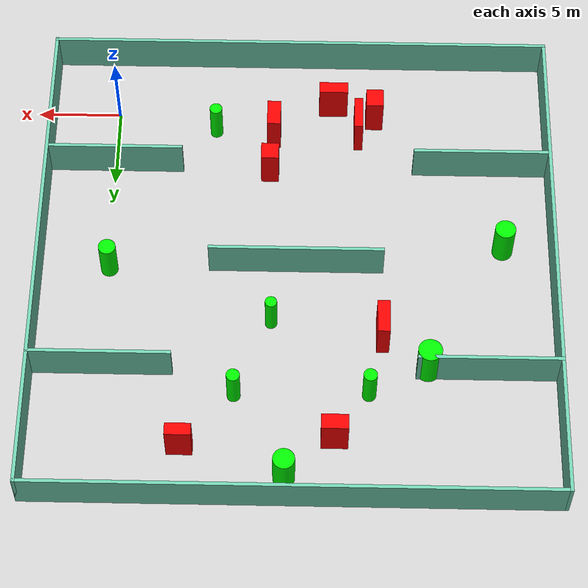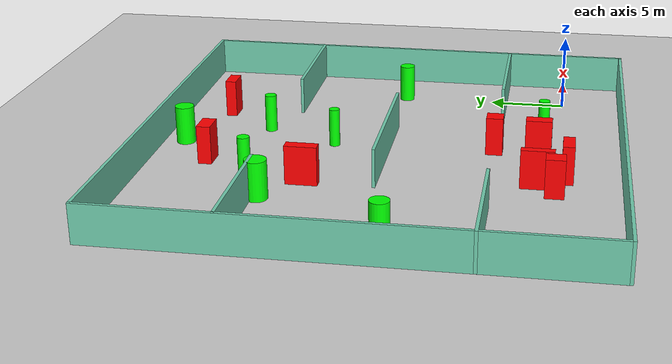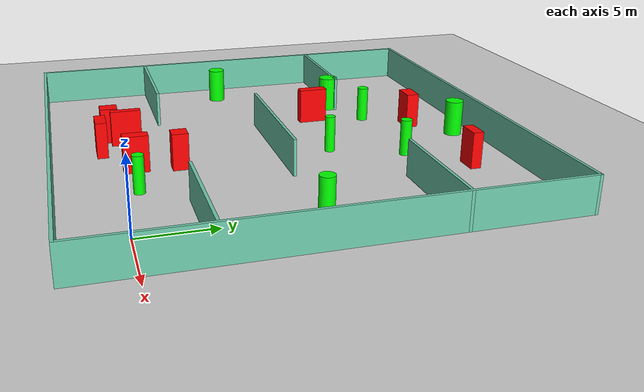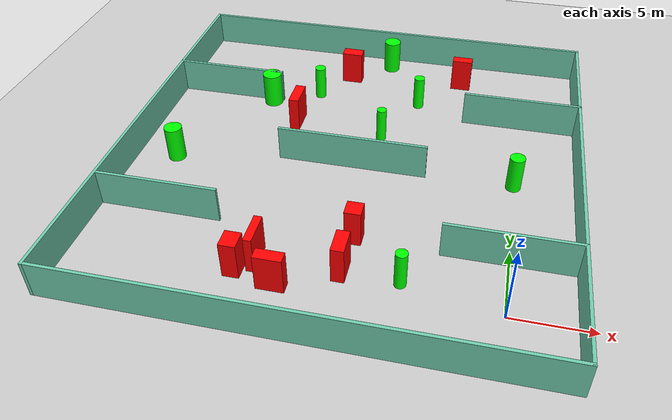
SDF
<sdf version="1.7">
 <world name="default">
  <light name="sun" type="directional">
   <pose>0 0 10 0 -0 0</pose>
   <diffuse>0.8 0.8 0.8 1</diffuse>
   <specular>0.2 0.2 0.2 1</specular>
   <attenuation>
    <range>1000</range>
    <constant>0.9</constant>
    <linear>0.01</linear>
    <quadratic>0.001</quadratic>
   </attenuation>
   <direction>-0.5 0.1 -0.9</direction>
   <spot><inner_angle>0</inner_angle><outer_angle>0</outer_angle><falloff>0</falloff></spot>
  </light>
  <model name="ground_plane">
   <static>1</static>
   <link name="link">
    <collision name="collision">
     <geometry><plane><normal>0 0 1</normal><size>100 100</size></plane></geometry>
     <surface>
      <contact><collide_bitmask>65535</collide_bitmask></contact>
      <friction><ode><mu>100</mu><mu2>50</mu2></ode></friction>
     </surface>
    </collision>
    <visual name="visual">
     <cast_shadows>0</cast_shadows>
     <geometry><plane><normal>0 0 1</normal><size>100 100</size></plane></geometry>
     <material>
      <script><uri>file://media/materials/scripts/gazebo.material</uri><name>Gazebo/Grey</name></script>
     </material>
    </visual>
   </link>
  </model>
  <gravity>0 0 -9.8</gravity>
  <magnetic_field>6e-06 2.3e-05 -4.2e-05</magnetic_field>
  <atmosphere type="adiabatic"/>
  <physics type="ode">
   <max_step_size>0.001</max_step_size>
   <real_time_factor>1</real_time_factor>
   <real_time_update_rate>1000</real_time_update_rate>
  </physics>
  <scene><ambient>0.4 0.4 0.4 1</ambient><background>0.7 0.7 0.7 1</background><shadows>1</shadows></scene>
  <spherical_coordinates>
   <surface_model>EARTH_WGS84</surface_model>
   <latitude_deg>0</latitude_deg>
   <longitude_deg>0</longitude_deg>
   <elevation>0</elevation>
   <heading_deg>0</heading_deg>
  </spherical_coordinates>
  <model name="my_base_walls">
   <link name="Wall_10">
    <collision name="Wall_10_Collision">
     <geometry><box><size>8.2 0.2 2.5</size></box></geometry>
     <pose>0 0 1.25 0 -0 0</pose>
    </collision>
    <visual name="Wall_10_Visual">
     <pose>0 0 1.25 0 -0 0</pose>
     <geometry><box><size>8.2 0.2 2.5</size></box></geometry>
     <material>
      <script><uri>file://media/materials/scripts/gazebo.material</uri><name>Gazebo/Grey</name></script>
      <ambient>0.435294 0.796078 0.67451 1</ambient>
     </material>
     <meta><layer>0</layer></meta>
    </visual>
    <pose>-11 -7 0 0 -0 0</pose>
   </link>
   <link name="Wall_12">
    <collision name="Wall_12_Collision">
     <geometry><box><size>8.2 0.2 2.5</size></box></geometry>
     <pose>0 0 1.25 0 -0 0</pose>
    </collision>
    <visual name="Wall_12_Visual">
     <pose>0 0 1.25 0 -0 0</pose>
     <geometry><box><size>8.2 0.2 2.5</size></box></geometry>
     <material>
      <script><uri>file://media/materials/scripts/gazebo.material</uri><name>Gazebo/Grey</name></script>
      <ambient>0.435294 0.796078 0.67451 1</ambient>
     </material>
     <meta><layer>0</layer></meta>
    </visual>
    <pose>-11 7 0 0 -0 0</pose>
   </link>
   <link name="Wall_14">
    <collision name="Wall_14_Collision">
     <geometry><box><size>8.2 0.2 2.5</size></box></geometry>
     <pose>0 0 1.25 0 -0 0</pose>
    </collision>
    <visual name="Wall_14_Visual">
     <pose>0 0 1.25 0 -0 0</pose>
     <geometry><box><size>8.2 0.2 2.5</size></box></geometry>
     <material>
      <script><uri>file://media/materials/scripts/gazebo.material</uri><name>Gazebo/Grey</name></script>
      <ambient>0.435294 0.796078 0.67451 1</ambient>
     </material>
     <meta><layer>0</layer></meta>
    </visual>
    <pose>11 7 0 0 -0 3.14159</pose>
   </link>
   <link name="Wall_16">
    <collision name="Wall_16_Collision">
     <geometry><box><size>10.2 0.2 2.5</size></box></geometry>
     <pose>0 0 1.25 0 -0 0</pose>
    </collision>
    <visual name="Wall_16_Visual">
     <pose>0 0 1.25 0 -0 0</pose>
     <geometry><box><size>10.2 0.2 2.5</size></box></geometry>
     <material>
      <script><uri>file://media/materials/scripts/gazebo.material</uri><name>Gazebo/Grey</name></script>
      <ambient>0.435294 0.796078 0.67451 1</ambient>
     </material>
     <meta><layer>0</layer></meta>
    </visual>
    <pose>0 0 0 0 -0 3.14159</pose>
   </link>
   <link name="Wall_2">
    <collision name="Wall_2_Collision">
     <geometry><box><size>30.2 0.2 2.5</size></box></geometry>
     <pose>0 0 1.25 0 -0 0</pose>
    </collision>
    <visual name="Wall_2_Visual">
     <pose>0 0 1.25 0 -0 0</pose>
     <geometry><box><size>30.2 0.2 2.5</size></box></geometry>
     <material>
      <script><uri>file://media/materials/scripts/gazebo.material</uri><name>Gazebo/Grey</name></script>
      <ambient>0.435294 0.796078 0.67451 1</ambient>
     </material>
     <meta><layer>0</layer></meta>
    </visual>
    <pose>0 -15 0 0 -0 3.14159</pose>
   </link>
   <link name="Wall_3">
    <collision name="Wall_3_Collision">
     <geometry><box><size>30.2 0.2 2.5</size></box></geometry>
     <pose>0 0 1.25 0 -0 0</pose>
    </collision>
    <visual name="Wall_3_Visual">
     <pose>0 0 1.25 0 -0 0</pose>
     <geometry><box><size>30.2 0.2 2.5</size></box></geometry>
     <material>
      <script><uri>file://media/materials/scripts/gazebo.material</uri><name>Gazebo/Grey</name></script>
      <ambient>0.435294 0.796078 0.67451 1</ambient>
     </material>
     <meta><layer>0</layer></meta>
    </visual>
    <pose>-15 0 0 0 -0 1.5708</pose>
   </link>
   <link name="Wall_4">
    <collision name="Wall_4_Collision">
     <geometry><box><size>30.2 0.2 2.5</size></box></geometry>
     <pose>0 0 1.25 0 -0 0</pose>
    </collision>
    <visual name="Wall_4_Visual">
     <pose>0 0 1.25 0 -0 0</pose>
     <geometry><box><size>30.2 0.2 2.5</size></box></geometry>
     <material>
      <script><uri>file://media/materials/scripts/gazebo.material</uri><name>Gazebo/Grey</name></script>
      <ambient>0.435294 0.796078 0.67451 1</ambient>
     </material>
     <meta><layer>0</layer></meta>
    </visual>
    <pose>0 15 0 0 -0 0</pose>
   </link>
   <link name="Wall_6">
    <collision name="Wall_6_Collision">
     <geometry><box><size>30.2 0.2 2.5</size></box></geometry>
     <pose>0 0 1.25 0 -0 0</pose>
    </collision>
    <visual name="Wall_6_Visual">
     <pose>0 0 1.25 0 -0 0</pose>
     <geometry><box><size>30.2 0.2 2.5</size></box></geometry>
     <material>
      <script><uri>file://media/materials/scripts/gazebo.material</uri><name>Gazebo/Grey</name></script>
      <ambient>0.435294 0.796078 0.67451 1</ambient>
     </material>
     <meta><layer>0</layer></meta>
    </visual>
    <pose>15 0 0 0 -0 1.5708</pose>
   </link>
   <link name="Wall_8">
    <collision name="Wall_8_Collision">
     <geometry><box><size>8.2 0.2 2.5</size></box></geometry>
     <pose>0 0 1.25 0 -0 0</pose>
    </collision>
    <visual name="Wall_8_Visual">
     <pose>0 0 1.25 0 -0 0</pose>
     <geometry><box><size>8.2 0.2 2.5</size></box></geometry>
     <material>
      <script><uri>file://media/materials/scripts/gazebo.material</uri><name>Gazebo/Grey</name></script>
      <ambient>0.435294 0.796078 0.67451 1</ambient>
     </material>
     <meta><layer>0</layer></meta>
    </visual>
    <pose>11 -7 0 0 -0 3.14159</pose>
   </link>
   <static>1</static>
   <pose>-11 11 0 0 -0 0</pose>
  </model>
  <model name="cylinder1">
   <static>1</static>
   <link name="link">
    <inertial>
     <mass>1</mass>
     <inertia><ixx>0.5</ixx><ixy>0</ixy><ixz>0</ixz><iyy>0.5</iyy><iyz>0</iyz><izz>1</izz></inertia>
    </inertial>
    <collision name="collision">
     <geometry><cylinder><radius>0.3914312817632353</radius><length>2.5</length></cylinder></geometry>
    </collision>
    <visual name="visual">
     <geometry><cylinder><radius>0.3914312817632353</radius><length>2.5</length></cylinder></geometry>
     <material>
      <ambient>0 1 0 1</ambient>
      <diffuse>0 1 0 1</diffuse>
      <specular>0.1 0.1 0.1 1</specular>
      <emissive>0 0 0 0</emissive>
     </material>
    </visual>
   </link>
   <pose>-15.253237675769116 19.22410650579916 1.25 0 0 0</pose>
  </model>
  <model name="cylinder2">
   <static>1</static>
   <link name="link">
    <inertial>
     <mass>1</mass>
     <inertia><ixx>0.5</ixx><ixy>0</ixy><ixz>0</ixz><iyy>0.5</iyy><iyz>0</iyz><izz>1</izz></inertia>
    </inertial>
    <collision name="collision">
     <geometry><cylinder><radius>0.38416240366893517</radius><length>2.5</length></cylinder></geometry>
    </collision>
    <visual name="visual">
     <geometry><cylinder><radius>0.38416240366893517</radius><length>2.5</length></cylinder></geometry>
     <material>
      <ambient>0 1 0 1</ambient>
      <diffuse>0 1 0 1</diffuse>
      <specular>0.1 0.1 0.1 1</specular>
      <emissive>0 0 0 0</emissive>
     </material>
    </visual>
   </link>
   <pose>-7.607778443270563 19.378030767859233 1.25 0 0 0</pose>
  </model>
  <model name="cylinder3">
   <static>1</static>
   <link name="link">
    <inertial>
     <mass>1</mass>
     <inertia><ixx>0.5</ixx><ixy>0</ixy><ixz>0</ixz><iyy>0.5</iyy><iyz>0</iyz><izz>1</izz></inertia>
    </inertial>
    <collision name="collision">
     <geometry><cylinder><radius>0.6003707256341149</radius><length>2.5</length></cylinder></geometry>
    </collision>
    <visual name="visual">
     <geometry><cylinder><radius>0.6003707256341149</radius><length>2.5</length></cylinder></geometry>
     <material>
      <ambient>0 1 0 1</ambient>
      <diffuse>0 1 0 1</diffuse>
      <specular>0.1 0.1 0.1 1</specular>
      <emissive>0 0 0 0</emissive>
     </material>
    </visual>
   </link>
   <pose>-23.131097211399418 9.497689233104 1.25 0 0 0</pose>
  </model>
  <model name="cylinder4">
   <static>1</static>
   <link name="link">
    <inertial>
     <mass>1</mass>
     <inertia><ixx>0.5</ixx><ixy>0</ixy><ixz>0</ixz><iyy>0.5</iyy><iyz>0</iyz><izz>1</izz></inertia>
    </inertial>
    <collision name="collision">
     <geometry><cylinder><radius>0.684373448712865</radius><length>2.5</length></cylinder></geometry>
    </collision>
    <visual name="visual">
     <geometry><cylinder><radius>0.684373448712865</radius><length>2.5</length></cylinder></geometry>
     <material>
      <ambient>0 1 0 1</ambient>
      <diffuse>0 1 0 1</diffuse>
      <specular>0.1 0.1 0.1 1</specular>
      <emissive>0 0 0 0</emissive>
     </material>
    </visual>
   </link>
   <pose>-18.608595940994626 17.595638244422666 1.25 0 0 0</pose>
  </model>
  <model name="cylinder5">
   <static>1</static>
   <link name="link">
    <inertial>
     <mass>1</mass>
     <inertia><ixx>0.5</ixx><ixy>0</ixy><ixz>0</ixz><iyy>0.5</iyy><iyz>0</iyz><izz>1</izz></inertia>
    </inertial>
    <collision name="collision">
     <geometry><cylinder><radius>0.3432809621709949</radius><length>2.5</length></cylinder></geometry>
    </collision>
    <visual name="visual">
     <geometry><cylinder><radius>0.3432809621709949</radius><length>2.5</length></cylinder></geometry>
     <material>
      <ambient>0 1 0 1</ambient>
      <diffuse>0 1 0 1</diffuse>
      <specular>0.1 0.1 0.1 1</specular>
      <emissive>0 0 0 0</emissive>
     </material>
    </visual>
   </link>
   <pose>-9.61727996523993 14.634278287488613 1.25 0 0 0</pose>
  </model>
  <model name="cylinder6">
   <static>1</static>
   <link name="link">
    <inertial>
     <mass>1</mass>
     <inertia><ixx>0.5</ixx><ixy>0</ixy><ixz>0</ixz><iyy>0.5</iyy><iyz>0</iyz><izz>1</izz></inertia>
    </inertial>
    <collision name="collision">
     <geometry><cylinder><radius>0.37136080765953994</radius><length>2.5</length></cylinder></geometry>
    </collision>
    <visual name="visual">
     <geometry><cylinder><radius>0.37136080765953994</radius><length>2.5</length></cylinder></geometry>
     <material>
      <ambient>0 1 0 1</ambient>
      <diffuse>0 1 0 1</diffuse>
      <specular>0.1 0.1 0.1 1</specular>
      <emissive>0 0 0 0</emissive>
     </material>
    </visual>
   </link>
   <pose>-5.994973376630977 1.149258544612458 1.25 0 0 0</pose>
  </model>
  <model name="cylinder7">
   <static>1</static>
   <link name="link">
    <inertial>
     <mass>1</mass>
     <inertia><ixx>0.5</ixx><ixy>0</ixy><ixz>0</ixz><iyy>0.5</iyy><iyz>0</iyz><izz>1</izz></inertia>
    </inertial>
    <collision name="collision">
     <geometry><cylinder><radius>0.5013082423087727</radius><length>2.5</length></cylinder></geometry>
    </collision>
    <visual name="visual">
     <geometry><cylinder><radius>0.5013082423087727</radius><length>2.5</length></cylinder></geometry>
     <material>
      <ambient>0 1 0 1</ambient>
      <diffuse>0 1 0 1</diffuse>
      <specular>0.1 0.1 0.1 1</specular>
      <emissive>0 0 0 0</emissive>
     </material>
    </visual>
   </link>
   <pose>-0.06537960228454409 11.12186993148144 1.25 0 0 0</pose>
  </model>
  <model name="cylinder8">
   <static>1</static>
   <link name="link">
    <inertial>
     <mass>1</mass>
     <inertia><ixx>0.5</ixx><ixy>0</ixy><ixz>0</ixz><iyy>0.5</iyy><iyz>0</iyz><izz>1</izz></inertia>
    </inertial>
    <collision name="collision">
     <geometry><cylinder><radius>0.6164671740363656</radius><length>2.5</length></cylinder></geometry>
    </collision>
    <visual name="visual">
     <geometry><cylinder><radius>0.6164671740363656</radius><length>2.5</length></cylinder></geometry>
     <material>
      <ambient>0 1 0 1</ambient>
      <diffuse>0 1 0 1</diffuse>
      <specular>0.1 0.1 0.1 1</specular>
      <emissive>0 0 0 0</emissive>
     </material>
    </visual>
   </link>
   <pose>-10.526481706104557 24.452872277177132 1.25 0 0 0</pose>
  </model>
  <model name="box1">
   <static>1</static>
   <link name="link">
    <inertial>
     <mass>1</mass>
     <inertia><ixx>0.083</ixx><ixy>0</ixy><ixz>0</ixz><iyy>0.083</iyy><iyz>0</iyz><izz>0.083</izz></inertia>
    </inertial>
    <collision name="collision">
     <geometry><box><size>1.0464586151603081 1.0759921970510997 2.5</size></box></geometry>
    </collision>
    <visual name="visual">
     <geometry><box><size>1.0464586151603081 1.0759921970510997 2.5</size></box></geometry>
     <material>
      <ambient>1 0 0 1</ambient>
      <diffuse>1 0 0 1</diffuse>
      <specular>0.1 0.1 0.1 1</specular>
      <emissive>0 0 0 0</emissive>
     </material>
    </visual>
    <sensor name="my_contact" type="contact">
     <contact><collision>box_collision</collision><topic>__default_topic__</topic></contact>
    </sensor>
   </link>
   <pose>-9.331837237187653 4.183328542270792 1.25 0 0 0</pose>
  </model>
  <model name="box2">
   <static>1</static>
   <link name="link">
    <inertial>
     <mass>1</mass>
     <inertia><ixx>0.083</ixx><ixy>0</ixy><ixz>0</ixz><iyy>0.083</iyy><iyz>0</iyz><izz>0.083</izz></inertia>
    </inertial>
    <collision name="collision">
     <geometry><box><size>0.7130581253290311 2.0157158469570056 2.5</size></box></geometry>
    </collision>
    <visual name="visual">
     <geometry><box><size>0.7130581253290311 2.0157158469570056 2.5</size></box></geometry>
     <material>
      <ambient>1 0 0 1</ambient>
      <diffuse>1 0 0 1</diffuse>
      <specular>0.1 0.1 0.1 1</specular>
      <emissive>0 0 0 0</emissive>
     </material>
    </visual>
    <sensor name="my_contact" type="contact">
     <contact><collision>box_collision</collision><topic>__default_topic__</topic></contact>
    </sensor>
   </link>
   <pose>-16.0317941090178 15.418461347031915 1.25 0 0 0</pose>
  </model>
  <model name="box3">
   <static>1</static>
   <link name="link">
    <inertial>
     <mass>1</mass>
     <inertia><ixx>0.083</ixx><ixy>0</ixy><ixz>0</ixz><iyy>0.083</iyy><iyz>0</iyz><izz>0.083</izz></inertia>
    </inertial>
    <collision name="collision">
     <geometry><box><size>1.0260563513791379 1.1990753565779664 2.5</size></box></geometry>
    </collision>
    <visual name="visual">
     <geometry><box><size>1.0260563513791379 1.1990753565779664 2.5</size></box></geometry>
     <material>
      <ambient>1 0 0 1</ambient>
      <diffuse>1 0 0 1</diffuse>
      <specular>0.1 0.1 0.1 1</specular>
      <emissive>0 0 0 0</emissive>
     </material>
    </visual>
    <sensor name="my_contact" type="contact">
     <contact><collision>box_collision</collision><topic>__default_topic__</topic></contact>
    </sensor>
   </link>
   <pose>-15.608864924211602 0.16957570353219653 1.25 0 0 0</pose>
  </model>
  <model name="box4">
   <static>1</static>
   <link name="link">
    <inertial>
     <mass>1</mass>
     <inertia><ixx>0.083</ixx><ixy>0</ixy><ixz>0</ixz><iyy>0.083</iyy><iyz>0</iyz><izz>0.083</izz></inertia>
    </inertial>
    <collision name="collision">
     <geometry><box><size>1.7186266210526144 0.7412027523062584 2.5</size></box></geometry>
    </collision>
    <visual name="visual">
     <geometry><box><size>1.7186266210526144 0.7412027523062584 2.5</size></box></geometry>
     <material>
      <ambient>1 0 0 1</ambient>
      <diffuse>1 0 0 1</diffuse>
      <specular>0.1 0.1 0.1 1</specular>
      <emissive>0 0 0 0</emissive>
     </material>
    </visual>
    <sensor name="my_contact" type="contact">
     <contact><collision>box_collision</collision><topic>__default_topic__</topic></contact>
    </sensor>
   </link>
   <pose>-13.106972905065744 -0.5675037985231222 1.25 0 0 0</pose>
  </model>
  <model name="box5">
   <static>1</static>
   <link name="link">
    <inertial>
     <mass>1</mass>
     <inertia><ixx>0.083</ixx><ixy>0</ixy><ixz>0</ixz><iyy>0.083</iyy><iyz>0</iyz><izz>0.083</izz></inertia>
    </inertial>
    <collision name="collision">
     <geometry><box><size>0.810574735258939 1.67318688816971 2.5</size></box></geometry>
    </collision>
    <visual name="visual">
     <geometry><box><size>0.810574735258939 1.67318688816971 2.5</size></box></geometry>
     <material>
      <ambient>1 0 0 1</ambient>
      <diffuse>1 0 0 1</diffuse>
      <specular>0.1 0.1 0.1 1</specular>
      <emissive>0 0 0 0</emissive>
     </material>
    </visual>
    <sensor name="my_contact" type="contact">
     <contact><collision>box_collision</collision><topic>__default_topic__</topic></contact>
    </sensor>
   </link>
   <pose>-9.515986539480636 1.3629883760074613 1.25 0 0 0</pose>
  </model>
  <model name="box6">
   <static>1</static>
   <link name="link">
    <inertial>
     <mass>1</mass>
     <inertia><ixx>0.083</ixx><ixy>0</ixy><ixz>0</ixz><iyy>0.083</iyy><iyz>0</iyz><izz>0.083</izz></inertia>
    </inertial>
    <collision name="collision">
     <geometry><box><size>1.4688602734527803 0.7134642238204244 2.5</size></box></geometry>
    </collision>
    <visual name="visual">
     <geometry><box><size>1.4688602734527803 0.7134642238204244 2.5</size></box></geometry>
     <material>
      <ambient>1 0 0 1</ambient>
      <diffuse>1 0 0 1</diffuse>
      <specular>0.1 0.1 0.1 1</specular>
      <emissive>0 0 0 0</emissive>
     </material>
    </visual>
    <sensor name="my_contact" type="contact">
     <contact><collision>box_collision</collision><topic>__default_topic__</topic></contact>
    </sensor>
   </link>
   <pose>-4.69802433613161 22.766255329209756 1.25 0 0 0</pose>
  </model>
  <model name="box7">
   <static>1</static>
   <link name="link">
    <inertial>
     <mass>1</mass>
     <inertia><ixx>0.083</ixx><ixy>0</ixy><ixz>0</ixz><iyy>0.083</iyy><iyz>0</iyz><izz>0.083</izz></inertia>
    </inertial>
    <collision name="collision">
     <geometry><box><size>0.511792196655058 2.0757549880704076 2.5</size></box></geometry>
    </collision>
    <visual name="visual">
     <geometry><box><size>0.511792196655058 2.0757549880704076 2.5</size></box></geometry>
     <material>
      <ambient>1 0 0 1</ambient>
      <diffuse>1 0 0 1</diffuse>
      <specular>0.1 0.1 0.1 1</specular>
      <emissive>0 0 0 0</emissive>
     </material>
    </visual>
    <sensor name="my_contact" type="contact">
     <contact><collision>box_collision</collision><topic>__default_topic__</topic></contact>
    </sensor>
   </link>
   <pose>-14.634728428431515 1.2595560585792525 1.25 0 0 0</pose>
  </model>
  <model name="box8">
   <static>1</static>
   <link name="link">
    <inertial>
     <mass>1</mass>
     <inertia><ixx>0.083</ixx><ixy>0</ixy><ixz>0</ixz><iyy>0.083</iyy><iyz>0</iyz><izz>0.083</izz></inertia>
    </inertial>
    <collision name="collision">
     <geometry><box><size>1.519478477961798 0.8859501099260758 2.5</size></box></geometry>
    </collision>
    <visual name="visual">
     <geometry><box><size>1.519478477961798 0.8859501099260758 2.5</size></box></geometry>
     <material>
      <ambient>1 0 0 1</ambient>
      <diffuse>1 0 0 1</diffuse>
      <specular>0.1 0.1 0.1 1</specular>
      <emissive>0 0 0 0</emissive>
     </material>
    </visual>
    <sensor name="my_contact" type="contact">
     <contact><collision>box_collision</collision><topic>__default_topic__</topic></contact>
    </sensor>
   </link>
   <pose>-13.301169521514103 22.1429688528569 1.25 0 0 0</pose>
  </model>
 </world>
</sdf>
